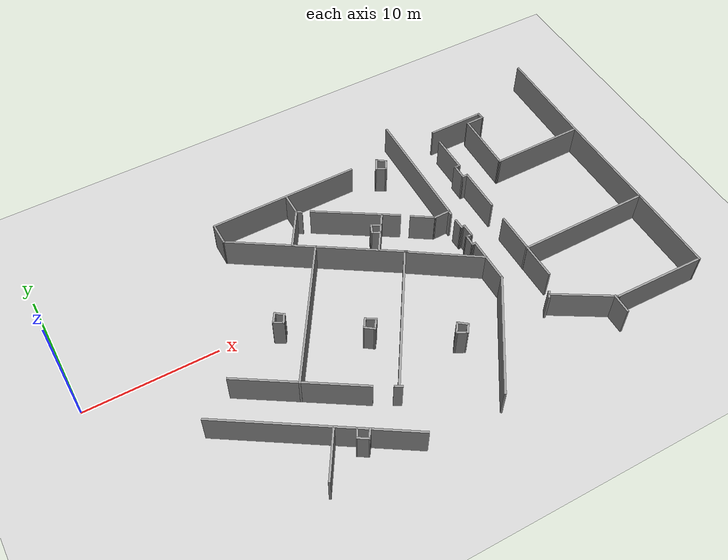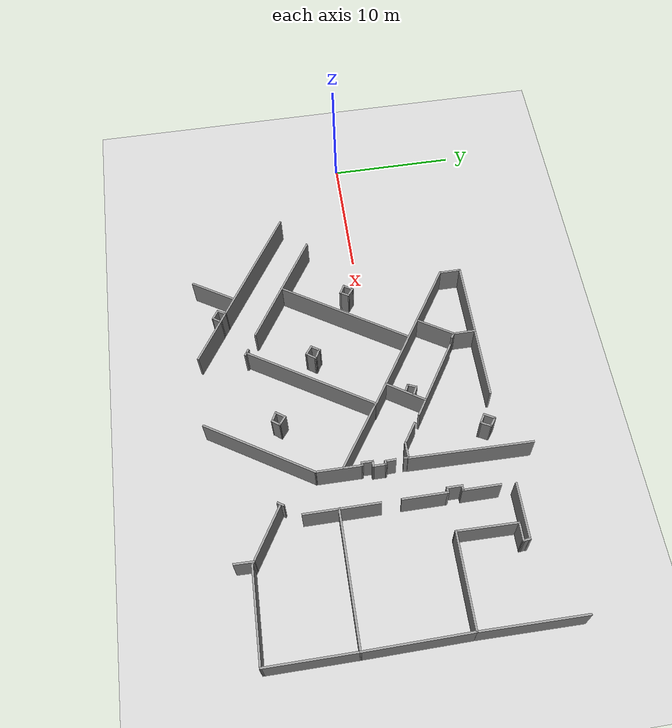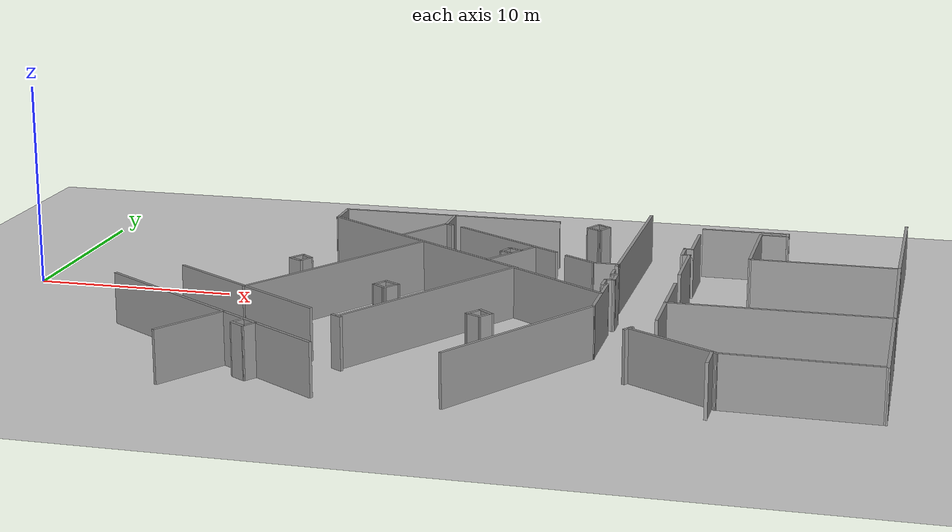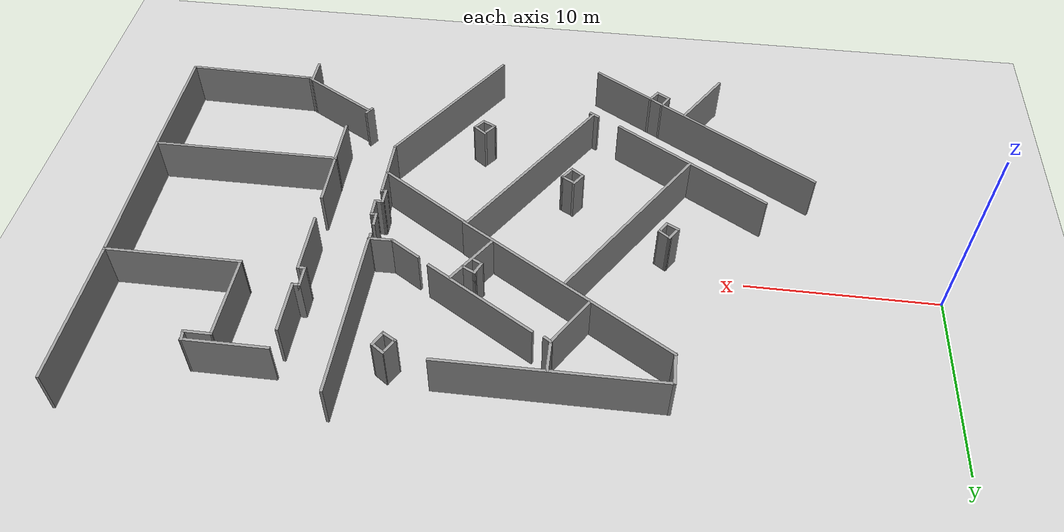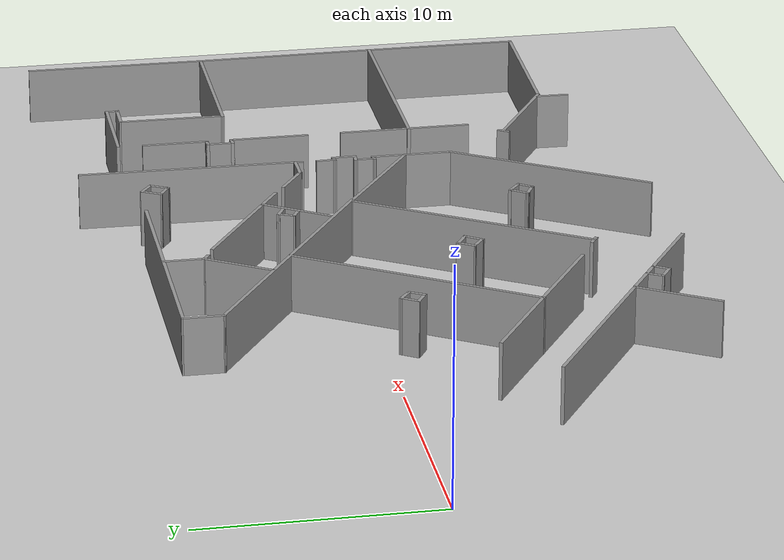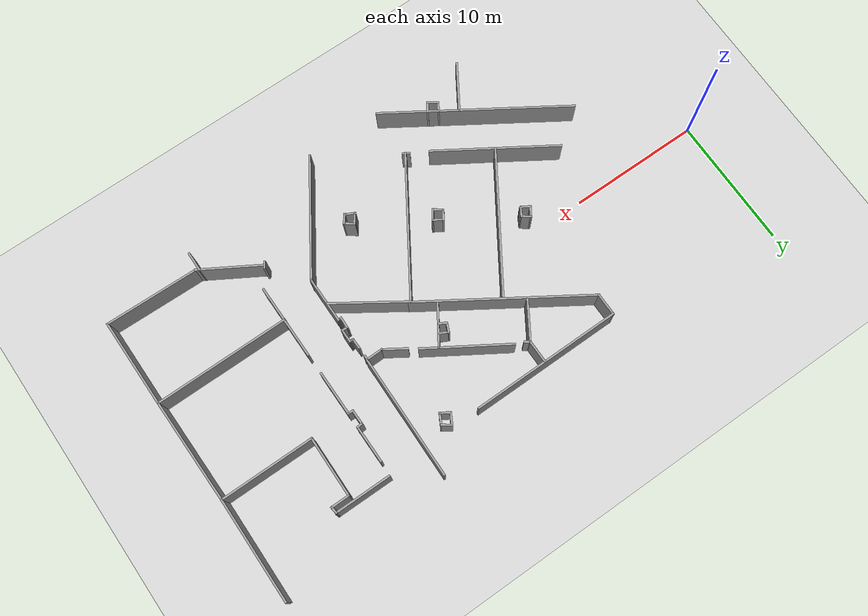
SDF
<sdf version="1.7">
 <world name="default">
  <model name="ground_plane">
   <static>1</static>
   <link name="link">
    <collision name="collision">
     <geometry><plane><normal>0 0 1</normal><size>100 100</size></plane></geometry>
     <surface><friction><ode><mu>100</mu><mu2>50</mu2></ode></friction></surface>
    </collision>
    <visual name="visual">
     <cast_shadows>0</cast_shadows>
     <geometry><plane><normal>0 0 1</normal><size>100 100</size></plane></geometry>
     <material>
      <script><uri>file://media/materials/scripts/gazebo.material</uri><name>Gazebo/Grey</name></script>
     </material>
    </visual>
   </link>
  </model>
  <model name="HopperFloorGround_Full">
   <pose>5.96828 -4.00427 0 0 -0 0</pose>
   <link name="Wall_166">
    <collision name="Wall_166_Collision">
     <geometry><box><size>14.443 0.15 2.5</size></box></geometry>
     <pose>0 0 1.25 0 -0 0</pose>
    </collision>
    <visual name="Wall_166_Visual">
     <pose>0 0 1.25 0 -0 0</pose>
     <geometry><box><size>14.443 0.15 2.5</size></box></geometry>
     <material>
      <script><uri>file://media/materials/scripts/gazebo.material</uri><name>Gazebo/Grey</name></script>
      <ambient>1 1 1 1</ambient>
     </material>
     <meta><layer>0</layer></meta>
    </visual>
    <pose>6.60464 -5.5119 0 0 -0 -0.570014</pose>
   </link>
   <link name="Wall_176">
    <collision name="Wall_176_Collision">
     <geometry><box><size>3.85464 0.15 2.5</size></box></geometry>
     <pose>0 0 1.25 0 -0 0</pose>
    </collision>
    <visual name="Wall_176_Visual">
     <pose>0 0 1.25 0 -0 0</pose>
     <geometry><box><size>3.85464 0.15 2.5</size></box></geometry>
     <material>
      <script><uri>file://media/materials/scripts/gazebo.material</uri><name>Gazebo/Grey</name></script>
      <ambient>1 1 1 1</ambient>
     </material>
     <meta><layer>0</layer></meta>
    </visual>
    <pose>6.61117 -7.72263 0 0 -0 -2.13246</pose>
   </link>
   <link name="Wall_200">
    <collision name="Wall_200_Collision">
     <geometry><box><size>0.835083 0.15 2.5</size></box></geometry>
     <pose>0 0 1.25 0 -0 0</pose>
    </collision>
    <visual name="Wall_200_Visual">
     <pose>0 0 1.25 0 -0 0</pose>
     <geometry><box><size>0.835083 0.15 2.5</size></box></geometry>
     <material>
      <script><uri>file://media/materials/scripts/gazebo.material</uri><name>Gazebo/Grey</name></script>
      <ambient>1 1 1 1</ambient>
     </material>
     <meta><layer>0</layer></meta>
    </visual>
    <pose>8.6848 -7.24916 0 0 -0 -2.08039</pose>
   </link>
   <link name="Wall_201">
    <collision name="Wall_201_Collision">
     <geometry><box><size>0.901419 0.15 2.5</size></box></geometry>
     <pose>0 0 1.25 0 -0 0</pose>
    </collision>
    <visual name="Wall_201_Visual">
     <pose>0 0 1.25 0 -0 0</pose>
     <geometry><box><size>0.901419 0.15 2.5</size></box></geometry>
     <material>
      <script><uri>file://media/materials/scripts/gazebo.material</uri><name>Gazebo/Grey</name></script>
      <ambient>1 1 1 1</ambient>
     </material>
     <meta><layer>0</layer></meta>
    </visual>
    <pose>8.83431 -7.75046 0 0 -0 -0.568525</pose>
   </link>
   <link name="Wall_202">
    <collision name="Wall_202_Collision">
     <geometry><box><size>0.833048 0.15 2.5</size></box></geometry>
     <pose>0 0 1.25 0 -0 0</pose>
    </collision>
    <visual name="Wall_202_Visual">
     <pose>0 0 1.25 0 -0 0</pose>
     <geometry><box><size>0.833048 0.15 2.5</size></box></geometry>
     <material>
      <script><uri>file://media/materials/scripts/gazebo.material</uri><name>Gazebo/Grey</name></script>
      <ambient>1 1 1 1</ambient>
     </material>
     <meta><layer>0</layer></meta>
    </visual>
    <pose>9.3444 -7.6713 0 0 -0 0.968509</pose>
   </link>
   <link name="Wall_266">
    <collision name="Wall_266_Collision">
     <geometry><box><size>0.825407 0.15 2.5</size></box></geometry>
     <pose>0 0 1.25 0 -0 0</pose>
    </collision>
    <visual name="Wall_266_Visual">
     <pose>0 0 1.25 0 -0 0</pose>
     <geometry><box><size>0.825407 0.15 2.5</size></box></geometry>
     <material>
      <script><uri>file://media/materials/scripts/gazebo.material</uri><name>Gazebo/Grey</name></script>
      <ambient>1 1 1 1</ambient>
     </material>
     <meta><layer>0</layer></meta>
    </visual>
    <pose>8.02918 2.5641 0 0 -0 -0.524796</pose>
   </link>
   <link name="Wall_267">
    <collision name="Wall_267_Collision">
     <geometry><box><size>0.825407 0.15 2.5</size></box></geometry>
     <pose>0 0 1.25 0 -0 0</pose>
    </collision>
    <visual name="Wall_267_Visual">
     <pose>0 0 1.25 0 -0 0</pose>
     <geometry><box><size>0.825407 0.15 2.5</size></box></geometry>
     <material>
      <script><uri>file://media/materials/scripts/gazebo.material</uri><name>Gazebo/Grey</name></script>
      <ambient>1 1 1 1</ambient>
     </material>
     <meta><layer>0</layer></meta>
    </visual>
    <pose>8.49064 2.68716 0 0 -0 1.046</pose>
   </link>
   <link name="Wall_268">
    <collision name="Wall_268_Collision">
     <geometry><box><size>0.808377 0.15 2.5</size></box></geometry>
     <pose>0 0 1.25 0 -0 0</pose>
    </collision>
    <visual name="Wall_268_Visual">
     <pose>0 0 1.25 0 -0 0</pose>
     <geometry><box><size>0.808377 0.15 2.5</size></box></geometry>
     <material>
      <script><uri>file://media/materials/scripts/gazebo.material</uri><name>Gazebo/Grey</name></script>
      <ambient>1 1 1 1</ambient>
     </material>
     <meta><layer>0</layer></meta>
    </visual>
    <pose>8.39835 3.17938 0 0 -0 2.48875</pose>
   </link>
   <link name="Wall_269">
    <collision name="Wall_269_Collision">
     <geometry><box><size>0.883834 0.15 2.5</size></box></geometry>
     <pose>0 0 1.25 0 -0 0</pose>
    </collision>
    <visual name="Wall_269_Visual">
     <pose>0 0 1.25 0 -0 0</pose>
     <geometry><box><size>0.883834 0.15 2.5</size></box></geometry>
     <material>
      <script><uri>file://media/materials/scripts/gazebo.material</uri><name>Gazebo/Grey</name></script>
      <ambient>1 1 1 1</ambient>
     </material>
     <meta><layer>0</layer></meta>
    </visual>
    <pose>7.93689 3.0717 0 0 -0 -2.14717</pose>
   </link>
   <link name="Wall_271">
    <collision name="Wall_271_Collision">
     <geometry><box><size>9.55491 0.15 2.5</size></box></geometry>
     <pose>0 0 1.25 0 -0 0</pose>
    </collision>
    <visual name="Wall_271_Visual">
     <pose>0 0 1.25 0 -0 0</pose>
     <geometry><box><size>9.55491 0.15 2.5</size></box></geometry>
     <material>
      <script><uri>file://media/materials/scripts/gazebo.material</uri><name>Gazebo/Grey</name></script>
      <ambient>1 1 1 1</ambient>
     </material>
     <meta><layer>0</layer></meta>
    </visual>
    <pose>7.18317 -2.25046 0 0 -0 -0.566227</pose>
   </link>
   <link name="Wall_273">
    <collision name="Wall_273_Collision">
     <geometry><box><size>0.619591 0.15 2.5</size></box></geometry>
     <pose>0 0 1.25 0 -0 0</pose>
    </collision>
    <visual name="Wall_273_Visual">
     <pose>0 0 1.25 0 -0 0</pose>
     <geometry><box><size>0.619591 0.15 2.5</size></box></geometry>
     <material>
      <script><uri>file://media/materials/scripts/gazebo.material</uri><name>Gazebo/Grey</name></script>
      <ambient>1 1 1 1</ambient>
     </material>
     <meta><layer>0</layer></meta>
    </visual>
    <pose>12.6438 -5.60373 0 0 -0 -0.551655</pose>
   </link>
   <link name="Wall_276">
    <collision name="Wall_276_Collision">
     <geometry><box><size>0.883834 0.15 2.5</size></box></geometry>
     <pose>0 0 1.25 0 -0 0</pose>
    </collision>
    <visual name="Wall_276_Visual">
     <pose>0 0 1.25 0 -0 0</pose>
     <geometry><box><size>0.883834 0.15 2.5</size></box></geometry>
     <material>
      <script><uri>file://media/materials/scripts/gazebo.material</uri><name>Gazebo/Grey</name></script>
      <ambient>1 1 1 1</ambient>
     </material>
     <meta><layer>0</layer></meta>
    </visual>
    <pose>13.1094 -0.277168 0 0 -0 -2.14717</pose>
   </link>
   <link name="Wall_277">
    <collision name="Wall_277_Collision">
     <geometry><box><size>0.876055 0.15 2.5</size></box></geometry>
     <pose>0 0 1.25 0 -0 0</pose>
    </collision>
    <visual name="Wall_277_Visual">
     <pose>0 0 1.25 0 -0 0</pose>
     <geometry><box><size>0.876055 0.15 2.5</size></box></geometry>
     <material>
      <script><uri>file://media/materials/scripts/gazebo.material</uri><name>Gazebo/Grey</name></script>
      <ambient>1 1 1 1</ambient>
     </material>
     <meta><layer>0</layer></meta>
    </visual>
    <pose>13.2017 -0.800155 0 0 -0 -0.635027</pose>
   </link>
   <link name="Wall_278">
    <collision name="Wall_278_Collision">
     <geometry><box><size>0.943924 0.15 2.5</size></box></geometry>
     <pose>0 0 1.25 0 -0 0</pose>
    </collision>
    <visual name="Wall_278_Visual">
     <pose>0 0 1.25 0 -0 0</pose>
     <geometry><box><size>0.943924 0.15 2.5</size></box></geometry>
     <material>
      <script><uri>file://media/materials/scripts/gazebo.material</uri><name>Gazebo/Grey</name></script>
      <ambient>1 1 1 1</ambient>
     </material>
     <meta><layer>0</layer></meta>
    </visual>
    <pose>13.7247 -0.692481 0 0 -0 0.950547</pose>
   </link>
   <link name="Wall_279">
    <collision name="Wall_279_Collision">
     <geometry><box><size>0.89408 0.15 2.5</size></box></geometry>
     <pose>0 0 1.25 0 -0 0</pose>
    </collision>
    <visual name="Wall_279_Visual">
     <pose>0 0 1.25 0 -0 0</pose>
     <geometry><box><size>0.89408 0.15 2.5</size></box></geometry>
     <material>
      <script><uri>file://media/materials/scripts/gazebo.material</uri><name>Gazebo/Grey</name></script>
      <ambient>1 1 1 1</ambient>
     </material>
     <meta><layer>0</layer></meta>
    </visual>
    <pose>13.6324 -0.184876 0 0 -0 2.62245</pose>
   </link>
   <link name="Wall_281">
    <collision name="Wall_281_Collision">
     <geometry><box><size>0.876055 0.15 2.5</size></box></geometry>
     <pose>0 0 1.25 0 -0 0</pose>
    </collision>
    <visual name="Wall_281_Visual">
     <pose>0 0 1.25 0 -0 0</pose>
     <geometry><box><size>0.876055 0.15 2.5</size></box></geometry>
     <material>
      <script><uri>file://media/materials/scripts/gazebo.material</uri><name>Gazebo/Grey</name></script>
      <ambient>1 1 1 1</ambient>
     </material>
     <meta><layer>0</layer></meta>
    </visual>
    <pose>18.3547 -3.64582 0 0 -0 -2.20582</pose>
   </link>
   <link name="Wall_282">
    <collision name="Wall_282_Collision">
     <geometry><box><size>0.879307 0.15 2.5</size></box></geometry>
     <pose>0 0 1.25 0 -0 0</pose>
    </collision>
    <visual name="Wall_282_Visual">
     <pose>0 0 1.25 0 -0 0</pose>
     <geometry><box><size>0.879307 0.15 2.5</size></box></geometry>
     <material>
      <script><uri>file://media/materials/scripts/gazebo.material</uri><name>Gazebo/Grey</name></script>
      <ambient>1 1 1 1</ambient>
     </material>
     <meta><layer>0</layer></meta>
    </visual>
    <pose>18.4624 -4.10728 0 0 -0 -0.482513</pose>
   </link>
   <link name="Wall_283">
    <collision name="Wall_283_Collision">
     <geometry><box><size>0.808377 0.15 2.5</size></box></geometry>
     <pose>0 0 1.25 0 -0 0</pose>
    </collision>
    <visual name="Wall_283_Visual">
     <pose>0 0 1.25 0 -0 0</pose>
     <geometry><box><size>0.808377 0.15 2.5</size></box></geometry>
     <material>
      <script><uri>file://media/materials/scripts/gazebo.material</uri><name>Gazebo/Grey</name></script>
      <ambient>1 1 1 1</ambient>
     </material>
     <meta><layer>0</layer></meta>
    </visual>
    <pose>18.9854 -4.01499 0 0 -0 0.91795</pose>
   </link>
   <link name="Wall_284">
    <collision name="Wall_284_Collision">
     <geometry><box><size>0.894716 0.15 2.5</size></box></geometry>
     <pose>0 0 1.25 0 -0 0</pose>
    </collision>
    <visual name="Wall_284_Visual">
     <pose>0 0 1.25 0 -0 0</pose>
     <geometry><box><size>0.894716 0.15 2.5</size></box></geometry>
     <material>
      <script><uri>file://media/materials/scripts/gazebo.material</uri><name>Gazebo/Grey</name></script>
      <ambient>1 1 1 1</ambient>
     </material>
     <meta><layer>0</layer></meta>
    </visual>
    <pose>18.8931 -3.52276 0 0 -0 2.4733</pose>
   </link>
   <link name="Wall_351">
    <collision name="Wall_351_Collision">
     <geometry><box><size>1.79826 0.15 2.5</size></box></geometry>
     <pose>0 0 1.25 0 -0 0</pose>
    </collision>
    <visual name="Wall_351_Visual">
     <pose>0 0 1.25 0 -0 0</pose>
     <geometry><box><size>1.79826 0.15 2.5</size></box></geometry>
     <material>
      <script><uri>file://media/materials/scripts/gazebo.material</uri><name>Gazebo/Grey</name></script>
      <ambient>1 1 1 1</ambient>
     </material>
     <meta><layer>0</layer></meta>
    </visual>
    <pose>7.66126 11.5106 0 0 -0 -1.5708</pose>
   </link>
   <link name="Wall_361">
    <collision name="Wall_361_Collision">
     <geometry><box><size>11.4809 0.15 2.5</size></box></geometry>
     <pose>0 0 1.25 0 -0 0</pose>
    </collision>
    <visual name="Wall_361_Visual">
     <pose>0 0 1.25 0 -0 0</pose>
     <geometry><box><size>11.4809 0.15 2.5</size></box></geometry>
     <material>
      <script><uri>file://media/materials/scripts/gazebo.material</uri><name>Gazebo/Grey</name></script>
      <ambient>1 1 1 1</ambient>
     </material>
     <meta><layer>0</layer></meta>
    </visual>
    <pose>13.3267 12.3548 0 0 -0 0.003591</pose>
   </link>
   <link name="Wall_365">
    <collision name="Wall_365_Collision">
     <geometry><box><size>13.2638 0.15 2.5</size></box></geometry>
     <pose>0 0 1.25 0 -0 0</pose>
    </collision>
    <visual name="Wall_365_Visual">
     <pose>0 0 1.25 0 -0 0</pose>
     <geometry><box><size>13.2638 0.15 2.5</size></box></geometry>
     <material>
      <script><uri>file://media/materials/scripts/gazebo.material</uri><name>Gazebo/Grey</name></script>
      <ambient>1 1 1 1</ambient>
     </material>
     <meta><layer>0</layer></meta>
    </visual>
    <pose>13.1741 7.13688 0 0 -0 -0.572083</pose>
   </link>
   <link name="Wall_367">
    <collision name="Wall_367_Collision">
     <geometry><box><size>1.83844 0.15 2.5</size></box></geometry>
     <pose>0 0 1.25 0 -0 0</pose>
    </collision>
    <visual name="Wall_367_Visual">
     <pose>0 0 1.25 0 -0 0</pose>
     <geometry><box><size>1.83844 0.15 2.5</size></box></geometry>
     <material>
      <script><uri>file://media/materials/scripts/gazebo.material</uri><name>Gazebo/Grey</name></script>
      <ambient>1 1 1 1</ambient>
     </material>
     <meta><layer>0</layer></meta>
    </visual>
    <pose>13.4793 11.5106 0 0 -0 -1.5708</pose>
   </link>
   <link name="Wall_368">
    <collision name="Wall_368_Collision">
     <geometry><box><size>3.20336 0.15 2.5</size></box></geometry>
     <pose>0 0 1.25 0 -0 0</pose>
    </collision>
    <visual name="Wall_368_Visual">
     <pose>0 0 1.25 0 -0 0</pose>
     <geometry><box><size>3.20336 0.15 2.5</size></box></geometry>
     <material>
      <script><uri>file://media/materials/scripts/gazebo.material</uri><name>Gazebo/Grey</name></script>
      <ambient>1 1 1 1</ambient>
     </material>
     <meta><layer>0</layer></meta>
    </visual>
    <pose>12.6656 9.37458 0 0 -0 -2.13293</pose>
   </link>
   <link name="Wall_370">
    <collision name="Wall_370_Collision">
     <geometry><box><size>0.516732 0.15 2.5</size></box></geometry>
     <pose>0 0 1.25 0 -0 0</pose>
    </collision>
    <visual name="Wall_370_Visual">
     <pose>0 0 1.25 0 -0 0</pose>
     <geometry><box><size>0.516732 0.15 2.5</size></box></geometry>
     <material>
      <script><uri>file://media/materials/scripts/gazebo.material</uri><name>Gazebo/Grey</name></script>
      <ambient>1 1 1 1</ambient>
     </material>
     <meta><layer>0</layer></meta>
    </visual>
    <pose>13.6318 10.5646 0 0 -0 -0.588003</pose>
   </link>
   <link name="Wall_372">
    <collision name="Wall_372_Collision">
     <geometry><box><size>6.68582 0.15 2.5</size></box></geometry>
     <pose>0 0 1.25 0 -0 0</pose>
    </collision>
    <visual name="Wall_372_Visual">
     <pose>0 0 1.25 0 -0 0</pose>
     <geometry><box><size>6.68582 0.15 2.5</size></box></geometry>
     <material>
      <script><uri>file://media/materials/scripts/gazebo.material</uri><name>Gazebo/Grey</name></script>
      <ambient>1 1 1 1</ambient>
     </material>
     <meta><layer>0</layer></meta>
    </visual>
    <pose>17.202 8.43881 0 0 -0 -0.561239</pose>
   </link>
   <link name="Wall_374">
    <collision name="Wall_374_Collision">
     <geometry><box><size>3.38301 0.15 2.5</size></box></geometry>
     <pose>0 0 1.25 0 -0 0</pose>
    </collision>
    <visual name="Wall_374_Visual">
     <pose>0 0 1.25 0 -0 0</pose>
     <geometry><box><size>3.38301 0.15 2.5</size></box></geometry>
     <material>
      <script><uri>file://media/materials/scripts/gazebo.material</uri><name>Gazebo/Grey</name></script>
      <ambient>1 1 1 1</ambient>
     </material>
     <meta><layer>0</layer></meta>
    </visual>
    <pose>17.9445 6.05872 0 0 -0 0.99152</pose>
   </link>
   <link name="Wall_376">
    <collision name="Wall_376_Collision">
     <geometry><box><size>0.832313 0.15 2.5</size></box></geometry>
     <pose>0 0 1.25 0 -0 0</pose>
    </collision>
    <visual name="Wall_376_Visual">
     <pose>0 0 1.25 0 -0 0</pose>
     <geometry><box><size>0.832313 0.15 2.5</size></box></geometry>
     <material>
      <script><uri>file://media/materials/scripts/gazebo.material</uri><name>Gazebo/Grey</name></script>
      <ambient>1 1 1 1</ambient>
     </material>
     <meta><layer>0</layer></meta>
    </visual>
    <pose>17.9546 6.75037 0 0 -0 2.67794</pose>
   </link>
   <link name="Wall_377">
    <collision name="Wall_377_Collision">
     <geometry><box><size>0.815115 0.15 2.5</size></box></geometry>
     <pose>0 0 1.25 0 -0 0</pose>
    </collision>
    <visual name="Wall_377_Visual">
     <pose>0 0 1.25 0 -0 0</pose>
     <geometry><box><size>0.815115 0.15 2.5</size></box></geometry>
     <material>
      <script><uri>file://media/materials/scripts/gazebo.material</uri><name>Gazebo/Grey</name></script>
      <ambient>1 1 1 1</ambient>
     </material>
     <meta><layer>0</layer></meta>
    </visual>
    <pose>17.5173 6.5978 0 0 -0 -1.9797</pose>
   </link>
   <link name="Wall_378">
    <collision name="Wall_378_Collision">
     <geometry><box><size>0.705246 0.15 2.5</size></box></geometry>
     <pose>0 0 1.25 0 -0 0</pose>
    </collision>
    <visual name="Wall_378_Visual">
     <pose>0 0 1.25 0 -0 0</pose>
     <geometry><box><size>0.705246 0.15 2.5</size></box></geometry>
     <material>
      <script><uri>file://media/materials/scripts/gazebo.material</uri><name>Gazebo/Grey</name></script>
      <ambient>1 1 1 1</ambient>
     </material>
     <meta><layer>0</layer></meta>
    </visual>
    <pose>17.6292 6.16044 0 0 -0 -0.496423</pose>
   </link>
   <link name="Wall_380">
    <collision name="Wall_380_Collision">
     <geometry><box><size>1.91618 0.15 2.5</size></box></geometry>
     <pose>0 0 1.25 0 -0 0</pose>
    </collision>
    <visual name="Wall_380_Visual">
     <pose>0 0 1.25 0 -0 0</pose>
     <geometry><box><size>1.91618 0.15 2.5</size></box></geometry>
     <material>
      <script><uri>file://media/materials/scripts/gazebo.material</uri><name>Gazebo/Grey</name></script>
      <ambient>1 1 1 1</ambient>
     </material>
     <meta><layer>0</layer></meta>
    </visual>
    <pose>21.362 5.75358 0 0 -0 -0.57203</pose>
   </link>
   <link name="Wall_381">
    <collision name="Wall_381_Collision">
     <geometry><box><size>1.33005 0.15 2.5</size></box></geometry>
     <pose>0 0 1.25 0 -0 0</pose>
    </collision>
    <visual name="Wall_381_Visual">
     <pose>0 0 1.25 0 -0 0</pose>
     <geometry><box><size>1.33005 0.15 2.5</size></box></geometry>
     <material>
      <script><uri>file://media/materials/scripts/gazebo.material</uri><name>Gazebo/Grey</name></script>
      <ambient>1 1 1 1</ambient>
     </material>
     <meta><layer>0</layer></meta>
    </visual>
    <pose>22.6945 5.2857 0 0 -0 0.01724</pose>
   </link>
   <link name="Wall_382">
    <collision name="Wall_382_Collision">
     <geometry><box><size>0.435523 0.15 2.5</size></box></geometry>
     <pose>0 0 1.25 0 -0 0</pose>
    </collision>
    <visual name="Wall_382_Visual">
     <pose>0 0 1.25 0 -0 0</pose>
     <geometry><box><size>0.435523 0.15 2.5</size></box></geometry>
     <material>
      <script><uri>file://media/materials/scripts/gazebo.material</uri><name>Gazebo/Grey</name></script>
      <ambient>1 1 1 1</ambient>
     </material>
     <meta><layer>0</layer></meta>
    </visual>
    <pose>23.2844 5.15348 0 0 -0 -1.5708</pose>
   </link>
   <link name="Wall_384">
    <collision name="Wall_384_Collision">
     <geometry><box><size>0.882618 0.15 2.5</size></box></geometry>
     <pose>0 0 1.25 0 -0 0</pose>
    </collision>
    <visual name="Wall_384_Visual">
     <pose>0 0 1.25 0 -0 0</pose>
     <geometry><box><size>0.882618 0.15 2.5</size></box></geometry>
     <material>
      <script><uri>file://media/materials/scripts/gazebo.material</uri><name>Gazebo/Grey</name></script>
      <ambient>1 1 1 1</ambient>
     </material>
     <meta><layer>0</layer></meta>
    </visual>
    <pose>23.2946 3.93292 0 0 -0 -1.54303</pose>
   </link>
   <link name="Wall_385">
    <collision name="Wall_385_Collision">
     <geometry><box><size>0.394958 0.15 2.5</size></box></geometry>
     <pose>0 0 1.25 0 -0 0</pose>
    </collision>
    <visual name="Wall_385_Visual">
     <pose>0 0 1.25 0 -0 0</pose>
     <geometry><box><size>0.394958 0.15 2.5</size></box></geometry>
     <material>
      <script><uri>file://media/materials/scripts/gazebo.material</uri><name>Gazebo/Grey</name></script>
      <ambient>1 1 1 1</ambient>
     </material>
     <meta><layer>0</layer></meta>
    </visual>
    <pose>23.4268 3.57692 0 0 -0 0.083141</pose>
   </link>
   <link name="Wall_386">
    <collision name="Wall_386_Collision">
     <geometry><box><size>1.1061 0.15 2.5</size></box></geometry>
     <pose>0 0 1.25 0 -0 0</pose>
    </collision>
    <visual name="Wall_386_Visual">
     <pose>0 0 1.25 0 -0 0</pose>
     <geometry><box><size>1.1061 0.15 2.5</size></box></geometry>
     <material>
      <script><uri>file://media/materials/scripts/gazebo.material</uri><name>Gazebo/Grey</name></script>
      <ambient>1 1 1 1</ambient>
     </material>
     <meta><layer>0</layer></meta>
    </visual>
    <pose>23.5489 3.10904 0 0 -0 -1.5708</pose>
   </link>
   <link name="Wall_387">
    <collision name="Wall_387_Collision">
     <geometry><box><size>0.537045 0.15 2.5</size></box></geometry>
     <pose>0 0 1.25 0 -0 0</pose>
    </collision>
    <visual name="Wall_387_Visual">
     <pose>0 0 1.25 0 -0 0</pose>
     <geometry><box><size>0.537045 0.15 2.5</size></box></geometry>
     <material>
      <script><uri>file://media/materials/scripts/gazebo.material</uri><name>Gazebo/Grey</name></script>
      <ambient>1 1 1 1</ambient>
     </material>
     <meta><layer>0</layer></meta>
    </visual>
    <pose>23.3556 2.64116 0 0 -0 3.08901</pose>
   </link>
   <link name="Wall_388">
    <collision name="Wall_388_Collision">
     <geometry><box><size>0.96396 0.15 2.5</size></box></geometry>
     <pose>0 0 1.25 0 -0 0</pose>
    </collision>
    <visual name="Wall_388_Visual">
     <pose>0 0 1.25 0 -0 0</pose>
     <geometry><box><size>0.96396 0.15 2.5</size></box></geometry>
     <material>
      <script><uri>file://media/materials/scripts/gazebo.material</uri><name>Gazebo/Grey</name></script>
      <ambient>1 1 1 1</ambient>
     </material>
     <meta><layer>0</layer></meta>
    </visual>
    <pose>23.1522 2.24447 0 0 -0 -1.59579</pose>
   </link>
   <link name="Wall_389">
    <collision name="Wall_389_Collision">
     <geometry><box><size>0.374692 0.15 2.5</size></box></geometry>
     <pose>0 0 1.25 0 -0 0</pose>
    </collision>
    <visual name="Wall_389_Visual">
     <pose>0 0 1.25 0 -0 0</pose>
     <geometry><box><size>0.374692 0.15 2.5</size></box></geometry>
     <material>
      <script><uri>file://media/materials/scripts/gazebo.material</uri><name>Gazebo/Grey</name></script>
      <ambient>1 1 1 1</ambient>
     </material>
     <meta><layer>0</layer></meta>
    </visual>
    <pose>23.2539 1.84779 0 0 -0 0.09066</pose>
   </link>
   <link name="Wall_390">
    <collision name="Wall_390_Collision">
     <geometry><box><size>3.60831 0.15 2.5</size></box></geometry>
     <pose>0 0 1.25 0 -0 0</pose>
    </collision>
    <visual name="Wall_390_Visual">
     <pose>0 0 1.25 0 -0 0</pose>
     <geometry><box><size>3.60831 0.15 2.5</size></box></geometry>
     <material>
      <script><uri>file://media/materials/scripts/gazebo.material</uri><name>Gazebo/Grey</name></script>
      <ambient>1 1 1 1</ambient>
     </material>
     <meta><layer>0</layer></meta>
    </visual>
    <pose>23.3556 0.128839 0 0 -0 -1.57668</pose>
   </link>
   <link name="Wall_392">
    <collision name="Wall_392_Collision">
     <geometry><box><size>9.38801 0.15 2.5</size></box></geometry>
     <pose>0 0 1.25 0 -0 0</pose>
    </collision>
    <visual name="Wall_392_Visual">
     <pose>0 0 1.25 0 -0 0</pose>
     <geometry><box><size>9.38801 0.15 2.5</size></box></geometry>
     <material>
      <script><uri>file://media/materials/scripts/gazebo.material</uri><name>Gazebo/Grey</name></script>
      <ambient>1 1 1 1</ambient>
     </material>
     <meta><layer>0</layer></meta>
    </visual>
    <pose>20.8636 -5.4959 0 0 -0 -2.13803</pose>
   </link>
   <link name="Wall_396">
    <collision name="Wall_396_Collision">
     <geometry><box><size>11.1152 0.15 2.5</size></box></geometry>
     <pose>0 0 1.25 0 -0 0</pose>
    </collision>
    <visual name="Wall_396_Visual">
     <pose>0 0 1.25 0 -0 0</pose>
     <geometry><box><size>11.1152 0.15 2.5</size></box></geometry>
     <material>
      <script><uri>file://media/materials/scripts/gazebo.material</uri><name>Gazebo/Grey</name></script>
      <ambient>1 1 1 1</ambient>
     </material>
     <meta><layer>0</layer></meta>
    </visual>
    <pose>15.6254 -1.00018 0 0 -0 1.00492</pose>
   </link>
   <link name="Wall_398">
    <collision name="Wall_398_Collision">
     <geometry><box><size>5.87103 0.15 2.5</size></box></geometry>
     <pose>0 0 1.25 0 -0 0</pose>
    </collision>
    <visual name="Wall_398_Visual">
     <pose>0 0 1.25 0 -0 0</pose>
     <geometry><box><size>5.87103 0.15 2.5</size></box></geometry>
     <material>
      <script><uri>file://media/materials/scripts/gazebo.material</uri><name>Gazebo/Grey</name></script>
      <ambient>1 1 1 1</ambient>
     </material>
     <meta><layer>0</layer></meta>
    </visual>
    <pose>20.945 2.04105 0 0 -0 -0.588003</pose>
   </link>
   <link name="Wall_400">
    <collision name="Wall_400_Collision">
     <geometry><box><size>0.977105 0.15 2.5</size></box></geometry>
     <pose>0 0 1.25 0 -0 0</pose>
    </collision>
    <visual name="Wall_400_Visual">
     <pose>0 0 1.25 0 -0 0</pose>
     <geometry><box><size>0.977105 0.15 2.5</size></box></geometry>
     <material>
      <script><uri>file://media/materials/scripts/gazebo.material</uri><name>Gazebo/Grey</name></script>
      <ambient>1 1 1 1</ambient>
     </material>
     <meta><layer>0</layer></meta>
    </visual>
    <pose>20.918 11.8836 0 0 -0 -2.0724</pose>
   </link>
   <link name="Wall_401">
    <collision name="Wall_401_Collision">
     <geometry><box><size>0.884216 0.15 2.5</size></box></geometry>
     <pose>0 0 1.25 0 -0 0</pose>
    </collision>
    <visual name="Wall_401_Visual">
     <pose>0 0 1.25 0 -0 0</pose>
     <geometry><box><size>0.884216 0.15 2.5</size></box></geometry>
     <material>
      <script><uri>file://media/materials/scripts/gazebo.material</uri><name>Gazebo/Grey</name></script>
      <ambient>1 1 1 1</ambient>
     </material>
     <meta><layer>0</layer></meta>
    </visual>
    <pose>21.035 11.3338 0 0 -0 -0.534955</pose>
   </link>
   <link name="Wall_402">
    <collision name="Wall_402_Collision">
     <geometry><box><size>0.945398 0.15 2.5</size></box></geometry>
     <pose>0 0 1.25 0 -0 0</pose>
    </collision>
    <visual name="Wall_402_Visual">
     <pose>0 0 1.25 0 -0 0</pose>
     <geometry><box><size>0.945398 0.15 2.5</size></box></geometry>
     <material>
      <script><uri>file://media/materials/scripts/gazebo.material</uri><name>Gazebo/Grey</name></script>
      <ambient>1 1 1 1</ambient>
     </material>
     <meta><layer>0</layer></meta>
    </visual>
    <pose>21.538 11.4976 0 0 -0 1.08084</pose>
   </link>
   <link name="Wall_403">
    <collision name="Wall_403_Collision">
     <geometry><box><size>0.870674 0.15 2.5</size></box></geometry>
     <pose>0 0 1.25 0 -0 0</pose>
    </collision>
    <visual name="Wall_403_Visual">
     <pose>0 0 1.25 0 -0 0</pose>
     <geometry><box><size>0.870674 0.15 2.5</size></box></geometry>
     <material>
      <script><uri>file://media/materials/scripts/gazebo.material</uri><name>Gazebo/Grey</name></script>
      <ambient>1 1 1 1</ambient>
     </material>
     <meta><layer>0</layer></meta>
    </visual>
    <pose>21.4327 12.059 0 0 -0 2.51757</pose>
   </link>
   <link name="Wall_406">
    <collision name="Wall_406_Collision">
     <geometry><box><size>9.50835 0.15 2.5</size></box></geometry>
     <pose>0 0 1.25 0 -0 0</pose>
    </collision>
    <visual name="Wall_406_Visual">
     <pose>0 0 1.25 0 -0 0</pose>
     <geometry><box><size>9.50835 0.15 2.5</size></box></geometry>
     <material>
      <script><uri>file://media/materials/scripts/gazebo.material</uri><name>Gazebo/Grey</name></script>
      <ambient>1 1 1 1</ambient>
     </material>
     <meta><layer>0</layer></meta>
    </visual>
    <pose>23.3861 10.0003 0 0 -0 -1.5858</pose>
   </link>
   <link name="Wall_532">
    <collision name="Wall_532_Collision">
     <geometry><box><size>11.2697 0.15 2.5</size></box></geometry>
     <pose>0 0 1.25 0 -0 0</pose>
    </collision>
    <visual name="Wall_532_Visual">
     <pose>0 0 1.25 0 -0 0</pose>
     <geometry><box><size>11.2697 0.15 2.5</size></box></geometry>
     <material>
      <script><uri>file://media/materials/scripts/gazebo.material</uri><name>Gazebo/Grey</name></script>
      <ambient>1 1 1 1</ambient>
     </material>
     <meta><layer>0</layer></meta>
    </visual>
    <pose>10.1885 2.41543 0 0 -0 0.999848</pose>
   </link>
   <link name="Wall_536">
    <collision name="Wall_536_Collision">
     <geometry><box><size>0.583974 0.15 2.5</size></box></geometry>
     <pose>0 0 1.25 0 -0 0</pose>
    </collision>
    <visual name="Wall_536_Visual">
     <pose>0 0 1.25 0 -0 0</pose>
     <geometry><box><size>0.583974 0.15 2.5</size></box></geometry>
     <material>
      <script><uri>file://media/materials/scripts/gazebo.material</uri><name>Gazebo/Grey</name></script>
      <ambient>1 1 1 1</ambient>
     </material>
     <meta><layer>0</layer></meta>
    </visual>
    <pose>25.3957 -4.38565 0 0 -0 0.99783</pose>
   </link>
   <link name="Wall_538">
    <collision name="Wall_538_Collision">
     <geometry><box><size>5.78737 0.15 2.5</size></box></geometry>
     <pose>0 0 1.25 0 -0 0</pose>
    </collision>
    <visual name="Wall_538_Visual">
     <pose>0 0 1.25 0 -0 0</pose>
     <geometry><box><size>5.78737 0.15 2.5</size></box></geometry>
     <material>
      <script><uri>file://media/materials/scripts/gazebo.material</uri><name>Gazebo/Grey</name></script>
      <ambient>1 1 1 1</ambient>
     </material>
     <meta><layer>0</layer></meta>
    </visual>
    <pose>26.4057 -0.10843 0 0 -0 1.5708</pose>
   </link>
   <link name="Wall_540">
    <collision name="Wall_540_Collision">
     <geometry><box><size>3.5 0.15 2.5</size></box></geometry>
     <pose>0 0 1.25 0 -0 0</pose>
    </collision>
    <visual name="Wall_540_Visual">
     <pose>0 0 1.25 0 -0 0</pose>
     <geometry><box><size>3.5 0.15 2.5</size></box></geometry>
     <material>
      <script><uri>file://media/materials/scripts/gazebo.material</uri><name>Gazebo/Grey</name></script>
      <ambient>1 1 1 1</ambient>
     </material>
     <meta><layer>0</layer></meta>
    </visual>
    <pose>26.3889 5.97437 0 0 -0 1.5708</pose>
   </link>
   <link name="Wall_541">
    <collision name="Wall_541_Collision">
     <geometry><box><size>0.5 0.15 2.5</size></box></geometry>
     <pose>0 0 1.25 0 -0 0</pose>
    </collision>
    <visual name="Wall_541_Visual">
     <pose>0 0 1.25 0 -0 0</pose>
     <geometry><box><size>0.5 0.15 2.5</size></box></geometry>
     <material>
      <script><uri>file://media/materials/scripts/gazebo.material</uri><name>Gazebo/Grey</name></script>
      <ambient>1 1 1 1</ambient>
     </material>
     <meta><layer>0</layer></meta>
    </visual>
    <pose>26.2139 7.64937 0 0 -0 3.14159</pose>
   </link>
   <link name="Wall_542">
    <collision name="Wall_542_Collision">
     <geometry><box><size>1.25 0.15 2.5</size></box></geometry>
     <pose>0 0 1.25 0 -0 0</pose>
    </collision>
    <visual name="Wall_542_Visual">
     <pose>0 0 1.25 0 -0 0</pose>
     <geometry><box><size>1.25 0.15 2.5</size></box></geometry>
     <material>
      <script><uri>file://media/materials/scripts/gazebo.material</uri><name>Gazebo/Grey</name></script>
      <ambient>1 1 1 1</ambient>
     </material>
     <meta><layer>0</layer></meta>
    </visual>
    <pose>26.0389 8.19937 0 0 -0 1.5708</pose>
   </link>
   <link name="Wall_543">
    <collision name="Wall_543_Collision">
     <geometry><box><size>0.5 0.15 2.5</size></box></geometry>
     <pose>0 0 1.25 0 -0 0</pose>
    </collision>
    <visual name="Wall_543_Visual">
     <pose>0 0 1.25 0 -0 0</pose>
     <geometry><box><size>0.5 0.15 2.5</size></box></geometry>
     <material>
      <script><uri>file://media/materials/scripts/gazebo.material</uri><name>Gazebo/Grey</name></script>
      <ambient>1 1 1 1</ambient>
     </material>
     <meta><layer>0</layer></meta>
    </visual>
    <pose>26.2139 8.74937 0 0 -0 0</pose>
   </link>
   <link name="Wall_544">
    <collision name="Wall_544_Collision">
     <geometry><box><size>2.92786 0.15 2.5</size></box></geometry>
     <pose>0 0 1.25 0 -0 0</pose>
    </collision>
    <visual name="Wall_544_Visual">
     <pose>0 0 1.25 0 -0 0</pose>
     <geometry><box><size>2.92786 0.15 2.5</size></box></geometry>
     <material>
      <script><uri>file://media/materials/scripts/gazebo.material</uri><name>Gazebo/Grey</name></script>
      <ambient>1 1 1 1</ambient>
     </material>
     <meta><layer>0</layer></meta>
    </visual>
    <pose>26.3889 10.1383 0 0 -0 1.5708</pose>
   </link>
   <link name="Wall_569">
    <collision name="Wall_569_Collision">
     <geometry><box><size>4.3744 0.15 2.5</size></box></geometry>
     <pose>0 0 1.25 0 -0 0</pose>
    </collision>
    <visual name="Wall_569_Visual">
     <pose>0 0 1.25 0 -0 0</pose>
     <geometry><box><size>4.3744 0.15 2.5</size></box></geometry>
     <material>
      <script><uri>file://media/materials/scripts/gazebo.material</uri><name>Gazebo/Grey</name></script>
      <ambient>1 1 1 1</ambient>
     </material>
     <meta><layer>0</layer></meta>
    </visual>
    <pose>28.5912 12.6644 0 0 -0 0</pose>
   </link>
   <link name="Wall_576">
    <collision name="Wall_576_Collision">
     <geometry><box><size>8.0356 0.15 2.5</size></box></geometry>
     <pose>0 0 1.25 0 -0 0</pose>
    </collision>
    <visual name="Wall_576_Visual">
     <pose>0 0 1.25 0 -0 0</pose>
     <geometry><box><size>8.0356 0.15 2.5</size></box></geometry>
     <material>
      <script><uri>file://media/materials/scripts/gazebo.material</uri><name>Gazebo/Grey</name></script>
      <ambient>1 1 1 1</ambient>
     </material>
     <meta><layer>0</layer></meta>
    </visual>
    <pose>36.4304 11.5692 0 0 -0 -1.57893</pose>
   </link>
   <link name="Wall_577">
    <collision name="Wall_577_Collision">
     <geometry><box><size>7.22177 0.15 2.5</size></box></geometry>
     <pose>0 0 1.25 0 -0 0</pose>
    </collision>
    <visual name="Wall_577_Visual">
     <pose>0 0 1.25 0 -0 0</pose>
     <geometry><box><size>7.22177 0.15 2.5</size></box></geometry>
     <material>
      <script><uri>file://media/materials/scripts/gazebo.material</uri><name>Gazebo/Grey</name></script>
      <ambient>1 1 1 1</ambient>
     </material>
     <meta><layer>0</layer></meta>
    </visual>
    <pose>32.8625 7.62658 0 0 -0 3.14159</pose>
   </link>
   <link name="Wall_578">
    <collision name="Wall_578_Collision">
     <geometry><box><size>4.71892 0.15 2.5</size></box></geometry>
     <pose>0 0 1.25 0 -0 0</pose>
    </collision>
    <visual name="Wall_578_Visual">
     <pose>0 0 1.25 0 -0 0</pose>
     <geometry><box><size>4.71892 0.15 2.5</size></box></geometry>
     <material>
      <script><uri>file://media/materials/scripts/gazebo.material</uri><name>Gazebo/Grey</name></script>
      <ambient>1 1 1 1</ambient>
     </material>
     <meta><layer>0</layer></meta>
    </visual>
    <pose>29.3579 9.91082 0 0 -0 1.5571</pose>
   </link>
   <link name="Wall_579">
    <collision name="Wall_579_Collision">
     <geometry><box><size>1.49551 0.15 2.5</size></box></geometry>
     <pose>0 0 1.25 0 -0 0</pose>
    </collision>
    <visual name="Wall_579_Visual">
     <pose>0 0 1.25 0 -0 0</pose>
     <geometry><box><size>1.49551 0.15 2.5</size></box></geometry>
     <material>
      <script><uri>file://media/materials/scripts/gazebo.material</uri><name>Gazebo/Grey</name></script>
      <ambient>1 1 1 1</ambient>
     </material>
     <meta><layer>0</layer></meta>
    </visual>
    <pose>30.0619 12.1951 0 0 -0 0</pose>
   </link>
   <link name="Wall_580">
    <collision name="Wall_580_Collision">
     <geometry><box><size>0.623519 0.15 2.5</size></box></geometry>
     <pose>0 0 1.25 0 -0 0</pose>
    </collision>
    <visual name="Wall_580_Visual">
     <pose>0 0 1.25 0 -0 0</pose>
     <geometry><box><size>0.623519 0.15 2.5</size></box></geometry>
     <material>
      <script><uri>file://media/materials/scripts/gazebo.material</uri><name>Gazebo/Grey</name></script>
      <ambient>1 1 1 1</ambient>
     </material>
     <meta><layer>0</layer></meta>
    </visual>
    <pose>30.7034 12.4298 0 0 -0 1.70335</pose>
   </link>
   <link name="Wall_582">
    <collision name="Wall_582_Collision">
     <geometry><box><size>10.25 0.15 2.5</size></box></geometry>
     <pose>0 0 1.25 0 -0 0</pose>
    </collision>
    <visual name="Wall_582_Visual">
     <pose>0 0 1.25 0 -0 0</pose>
     <geometry><box><size>10.25 0.15 2.5</size></box></geometry>
     <material>
      <script><uri>file://media/materials/scripts/gazebo.material</uri><name>Gazebo/Grey</name></script>
      <ambient>1 1 1 1</ambient>
     </material>
     <meta><layer>0</layer></meta>
    </visual>
    <pose>31.4352 -0.290044 0 0 -0 0</pose>
   </link>
   <link name="Wall_583">
    <collision name="Wall_583_Collision">
     <geometry><box><size>8.0671 0.15 2.5</size></box></geometry>
     <pose>0 0 1.25 0 -0 0</pose>
    </collision>
    <visual name="Wall_583_Visual">
     <pose>0 0 1.25 0 -0 0</pose>
     <geometry><box><size>8.0671 0.15 2.5</size></box></geometry>
     <material>
      <script><uri>file://media/materials/scripts/gazebo.material</uri><name>Gazebo/Grey</name></script>
      <ambient>1 1 1 1</ambient>
     </material>
     <meta><layer>0</layer></meta>
    </visual>
    <pose>36.4418 3.66827 0 0 -0 1.58177</pose>
   </link>
   <link name="Wall_586">
    <collision name="Wall_586_Collision">
     <geometry><box><size>4.92072 0.15 2.5</size></box></geometry>
     <pose>0 0 1.25 0 -0 0</pose>
    </collision>
    <visual name="Wall_586_Visual">
     <pose>0 0 1.25 0 -0 0</pose>
     <geometry><box><size>4.92072 0.15 2.5</size></box></geometry>
     <material>
      <script><uri>file://media/materials/scripts/gazebo.material</uri><name>Gazebo/Grey</name></script>
      <ambient>1 1 1 1</ambient>
     </material>
     <meta><layer>0</layer></meta>
    </visual>
    <pose>27.4648 -5.60952 0 0 -0 -0.537045</pose>
   </link>
   <link name="Wall_587">
    <collision name="Wall_587_Collision">
     <geometry><box><size>7.12965 0.15 2.5</size></box></geometry>
     <pose>0 0 1.25 0 -0 0</pose>
    </collision>
    <visual name="Wall_587_Visual">
     <pose>0 0 1.25 0 -0 0</pose>
     <geometry><box><size>7.12965 0.15 2.5</size></box></geometry>
     <material>
      <script><uri>file://media/materials/scripts/gazebo.material</uri><name>Gazebo/Grey</name></script>
      <ambient>1 1 1 1</ambient>
     </material>
     <meta><layer>0</layer></meta>
    </visual>
    <pose>33.0033 -6.90809 0 0 -0 -0.022418</pose>
   </link>
   <link name="Wall_589">
    <collision name="Wall_589_Collision">
     <geometry><box><size>6.84628 0.15 2.5</size></box></geometry>
     <pose>0 0 1.25 0 -0 0</pose>
    </collision>
    <visual name="Wall_589_Visual">
     <pose>0 0 1.25 0 -0 0</pose>
     <geometry><box><size>6.84628 0.15 2.5</size></box></geometry>
     <material>
      <script><uri>file://media/materials/scripts/gazebo.material</uri><name>Gazebo/Grey</name></script>
      <ambient>1 1 1 1</ambient>
     </material>
     <meta><layer>0</layer></meta>
    </visual>
    <pose>36.4887 -3.63818 0 0 -0 1.57184</pose>
   </link>
   <link name="Wall_601">
    <collision name="Wall_601_Collision">
     <geometry><box><size>1.5539 0.15 2.5</size></box></geometry>
     <pose>0 0 1.25 0 -0 0</pose>
    </collision>
    <visual name="Wall_601_Visual">
     <pose>0 0 1.25 0 -0 0</pose>
     <geometry><box><size>1.5539 0.15 2.5</size></box></geometry>
     <material>
      <script><uri>file://media/materials/scripts/gazebo.material</uri><name>Gazebo/Grey</name></script>
      <ambient>1 1 1 1</ambient>
     </material>
     <meta><layer>0</layer></meta>
    </visual>
    <pose>29.276 -7.38991 0 0 -0 -1.58774</pose>
   </link>
   <static>1</static>
  </model>
 </world>
</sdf>
